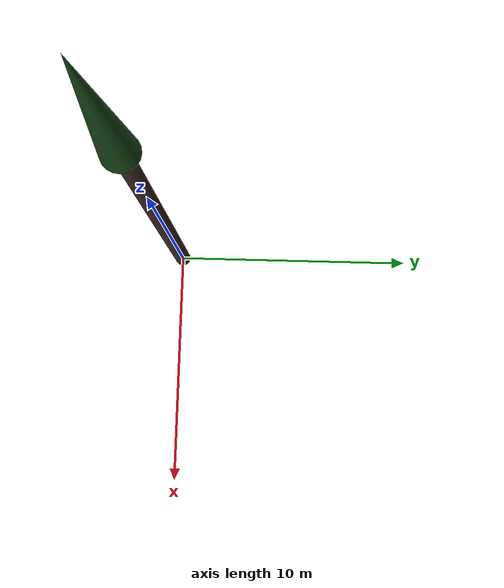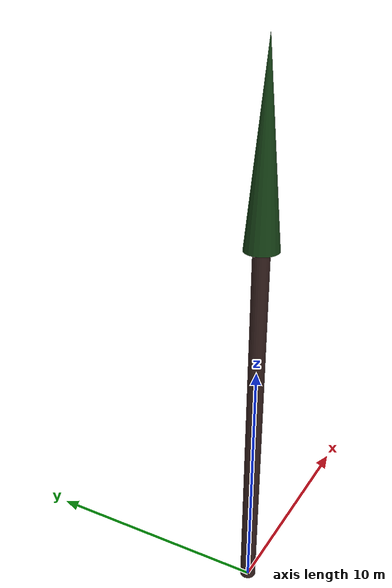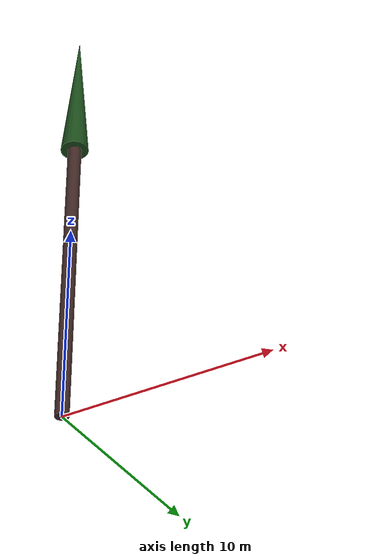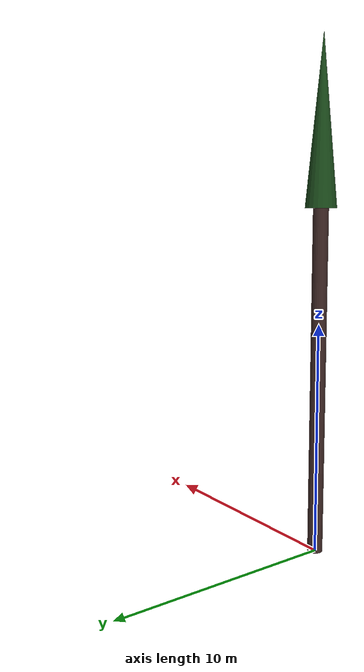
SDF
<?xml version="1.0" ?>
<sdf version="1.10">
  <model name="cypres_provence_11">
    <static>true</static>

    <!-- Tronc -->
    <link name="trunk">
      <pose>0 0 7.432138321535275 0 0 0</pose>
      <visual name="trunk_visual">
        <geometry>
          <cylinder>
            <radius>0.32556416807628197</radius>
            <length>14.86427664307055</length>
          </cylinder>
        </geometry>
        <material>
          <ambient>0.24 0.15 0.14 1</ambient>
          <diffuse>0.24 0.15 0.14 1</diffuse>
          <specular>0.1 0.1 0.1 1</specular>
        </material>
      </visual>
      <collision name="trunk_collision">
        <geometry>
          <cylinder>
            <radius>0.32556416807628197</radius>
            <length>14.86427664307055</length>
          </cylinder>
        </geometry>
      </collision>
    </link>

    <!-- Feuillage -->
    <link name="crown">
      <pose>0 0 18.395392929100836 0 0 0</pose>
      <visual name="crown_visual">
        <geometry>
          <cone>
              <radius>0.6661694079883237</radius>
              <length>7.062232572060573</length>
            </cone>
        </geometry>
        <material>
          <ambient>0.10 0.29 0.10 1</ambient>
          <diffuse>0.10 0.29 0.10 1</diffuse>
          <specular>0.1 0.1 0.1 1</specular>
        </material>
      </visual>
      <collision name="crown_collision">
        <geometry>
          <sphere>
            <radius>0.532935526390659</radius>
          </sphere>
        </geometry>
      </collision>
    </link>

    <!-- Joint tronc-feuillage -->
    <joint name="trunk_crown_joint" type="fixed">
      <parent>trunk</parent>
      <child>crown</child>
    </joint>

  </model>
</sdf>
